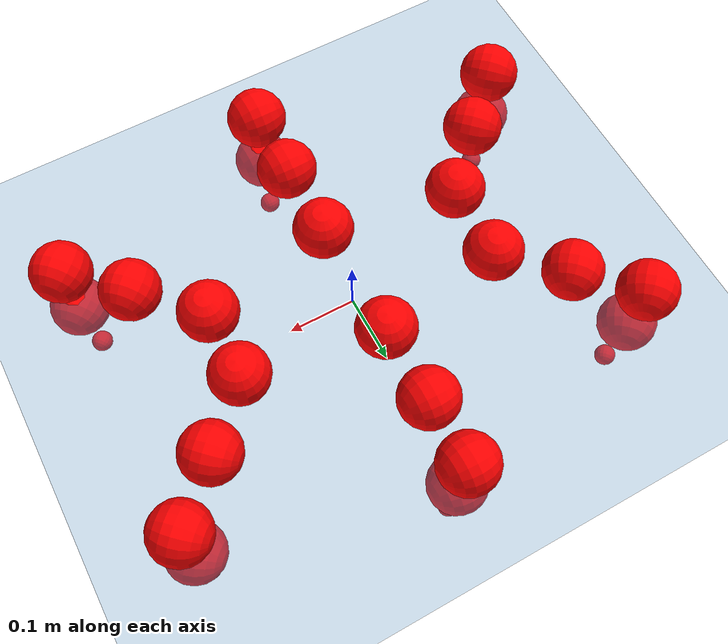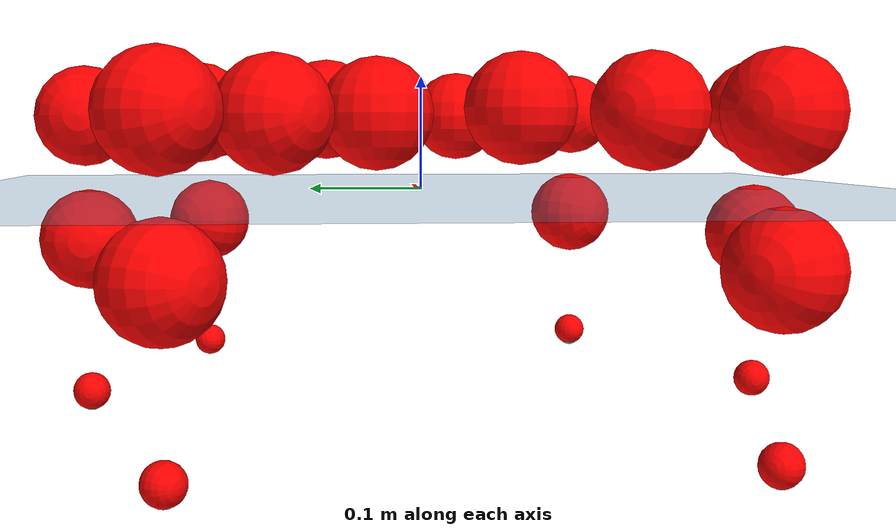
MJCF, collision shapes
<mujoco model="Golem">
  <compiler angle="radian" assetdir="assets" balanceinertia="true" inertiafromgeom="false"/>

  <option timestep="0.005" density="1.2" viscosity="2e-05"/>

  <size nkey="1"/>

  <visual>
    <quality shadowsize="8192"/>
    <map shadowclip="0.5"/>
  </visual>

  <default>
    <default class="/">
      <joint armature="0.01" damping="0.01" frictionloss="0.01"/>
      <geom contype="0" conaffinity="0" group="1" solref="-1000 -80"/>
      <site size="0.01 0.005 0.005" group="5"/>
      <general forcelimited="true" biastype="affine" gainprm="25" biasprm="0 -25 -0.5"/>
      <default class="visual">
        <geom type="mesh" group="2"/>
      </default>
      <default class="collision">
        <geom group="3"/>
      </default>
      <default class="foot">
        <geom size="0.01 0 0" condim="6" group="4" priority="1" solimp="0.015 1 0.01"/>
      </default>
      <default class="reward_collision_sphere">
        <geom group="5" rgba="1 0 0 1"/>
      </default>
    </default>
  </default>

  <asset>
    <texture type="skybox" colorspace="auto" name="//unnamed_texture_0" builtin="gradient" rgb1="0.95 0.95 0.95" rgb2="0.95 0.95 0.95" width="100" height="600"/>
    <texture type="2d" colorspace="auto" name="texplane" builtin="checker" rgb1="0.345 0.575 0.748" rgb2="0.345 0.575 0.748" markrgb="1 1 1" width="512" height="512"/>
    <material name="MatPlane" class="/" texture="texplane" texuniform="true" texrepeat="2 2" specular="0.9"/>
    <mesh name="body" class="/" file="body.stl" scale="0.001 0.001 0.001"/>
    <mesh name="coxa" class="/" file="coxa.stl" scale="0.001 0.001 0.001"/>
    <mesh name="femur" class="/" file="femur.stl" scale="0.001 0.001 0.001"/>
    <mesh name="tibia" class="/" file="tibia.stl" scale="0.001 0.001 0.001"/>
    <mesh name="tarsus" class="/" file="tarsus.stl" scale="0.001 0.001 0.001"/>
  </asset>

  <worldbody>
    <geom name="floor" class="/" size="100 100 0.125" type="plane" group="0" material="MatPlane"/>
    <light name="toplight_shadow" class="/" pos="0 0 5" dir="0.0990148 0.0990148 -0.990148" type="directional" ambient="0.04 0.04 0.04" diffuse="0.55 0.55 0.55" specular="0.12 0.12 0.12"/>
    <light name="toplight_fill" class="/" pos="0 0 5" dir="0.0990148 0.0990148 -0.990148" type="directional" castshadow="false" ambient="0.04 0.04 0.04" diffuse="0.3 0.3 0.3" specular="0.08 0.08 0.08"/>
    <body name="trunk" pos="-0.00281407 -0.00268567 -0.000439148" quat="1 0.000612151 0.00070043 0.000338775">
      <inertial pos="0.00320093 -0.0010725 -0.00237831" quat="0.999907 -0.00119332 -0.0131928 -0.00329611" mass="5.13546" diaginertia="0.0319896 0.00834583 0.0158068"/>
      <joint name="//unnamed_joint_0" type="free"/>
      <geom name="//unnamed_geom_1" class="/" pos="0 0 0.0692623" quat="1 0 0 0" type="mesh" rgba="0.9 0.9 0.9 1" mesh="body"/>
      <site name="imu" class="/" pos="0.176491 0.0140575 0.105866" size="0.0109974"/>
      <camera name="track" class="/" pos="0 -1.91976 0" quat="0.707107 0.707107 0 0" mode="trackcom"/>
      <camera name="ego_camera" class="/" pos="0.163427 0 0.108222" quat="-0.5 -0.5 0.5 0.5"/>
      <body name="coxa_RR" pos="-0.225379 -0.0823514 0.0701231" quat="0.382902 -0.000482915 -0.000149542 -0.923789">
        <inertial pos="-0.000288547 -0.000728847 0.0014767" quat="0.999997 8.88552e-06 0.00187661 -0.00150542" mass="0.267582" diaginertia="0.0304481 0.00809031 0.0147321"/>
        <joint name="coxa_joint_RR" class="/" pos="0 0 0" axis="0.00121337 7.17552e-05 -0.999999" range="-3.14215 3.10153" armature="0.0113264" damping="0.00380541" frictionloss="0.0115653"/>
        <geom name="//unnamed_geom_2" class="/" type="mesh" rgba="0.2 0.2 0.2 1" mesh="coxa"/>
        <geom name="//unnamed_geom_3" class="reward_collision_sphere" size="0.0439897" pos="-0.0377138 0 0"/>
        <body name="femur_RR" pos="0.0772433 0.0013697 -0.00294512" quat="0.500045 -0.499951 0.500074 0.49993">
          <inertial pos="-0.00166279 -0.000197161 -0.000915252" quat="0.999976 -0.00529589 0.00445067 -0.000416027" mass="0.256399" diaginertia="0.0303383 0.00792822 0.0145317"/>
          <joint name="femur_joint_RR" class="/" pos="0 0 0" axis="0.0096761 0.00185276 -0.999951" stiffness="0.00266042" range="-3.15143 3.13391" armature="0.011655" damping="0.0175194" frictionloss="0.0108807"/>
          <geom name="//unnamed_geom_4" class="/" type="mesh" rgba="0.9 0.9 0.9 1" mesh="femur"/>
          <geom name="//unnamed_geom_5" class="reward_collision_sphere" size="0.0439897"/>
          <body name="tibia_RR" pos="0.00135382 -0.105393 -0.00120475" quat="-0.000454405 1 0.000123421 0.00024024">
            <inertial pos="0.000416787 -0.000396169 -0.00251707" quat="0.999911 -0.000867301 -0.00375937 0.0127711" mass="0.274248" diaginertia="0.0317664 0.00849962 0.015029"/>
            <joint name="tibia_joint_RR" class="/" pos="0 0 0" axis="-0.00860685 0.0117647 0.999894" range="-3.19391 3.14261" armature="0.00984109" damping="0" frictionloss="0.00947373"/>
            <geom name="//unnamed_geom_6" class="/" type="mesh" rgba="0.2 0.2 0.2 1" mesh="tibia"/>
            <geom name="//unnamed_geom_7" class="reward_collision_sphere" size="0.0439897"/>
            <body name="tarsus_RR" pos="0.108741 0.00244936 -0.000186358" quat="1 3.39067e-05 0.000165314 -5.07676e-05">
              <inertial pos="0.0745696 0.000194544 -0.000128982" quat="0.50412 0.495812 0.497374 0.502646" mass="0.259108" diaginertia="0.031067 0.00783444 0.0147508"/>
              <joint name="tarsus_joint_RR" class="/" pos="0 0 0" axis="-0.00512979 7.79888e-06 0.999987" range="-3.1217 3.08311" armature="0.00999323" damping="0.0427712" frictionloss="0.011327"/>
              <geom name="//unnamed_geom_8" class="/" type="mesh" rgba="0.9 0.9 0.9 1" mesh="tarsus"/>
              <geom name="foot_1" class="foot" size="0.0111483" pos="0.140798 0 0" quat="0 -0.707107 0 0.707107"/>
              <geom name="//unnamed_geom_10" class="reward_collision_sphere" size="0.0439897"/>
              <geom name="//unnamed_geom_11" class="reward_collision_sphere" size="0.0164962" pos="0.135141 0 0"/>
              <site name="foot_1" class="foot" pos="0.140798 0 0" quat="0 -0.707107 0 0.707107" size="0.0109974"/>
            </body>
          </body>
        </body>
      </body>
      <body name="coxa_RM" pos="0.00041635 -0.125008 0.0730383" quat="0.706967 -0.000724625 -0.000281775 -0.707246">
        <inertial pos="-0.00260044 0.000249903 -0.00208171" quat="0.999901 -0.000881954 -0.000972617 0.0139914" mass="0.26604" diaginertia="0.0299038 0.00812497 0.0144425"/>
        <joint name="coxa_joint_RM" class="/" pos="0 0 0" axis="-0.00166814 -0.00038206 -0.999999" stiffness="0.00212897" range="-3.13312 3.15879" armature="0.0105533" damping="0.0112343" frictionloss="0.00990879"/>
        <geom name="//unnamed_geom_12" class="/" type="mesh" rgba="0.2 0.2 0.2 1" mesh="coxa"/>
        <geom name="//unnamed_geom_13" class="reward_collision_sphere" size="0.0439897" pos="-0.0377138 0 0"/>
        <body name="femur_RM" pos="0.0761744 0.000341993 -0.000747267" quat="0.499994 -0.500509 0.500756 0.49874">
          <inertial pos="0.00199278 0.000255447 0.000145084" quat="0.999968 0.000877708 -0.00559207 0.00573463" mass="0.265326" diaginertia="0.0315102 0.00786658 0.0149613"/>
          <joint name="femur_joint_RM" class="/" pos="0 0 0" axis="0.0107581 -0.00738881 -0.999915" range="-3.14394 3.12906" armature="0.0117571" damping="0.0156929" frictionloss="0.0115736"/>
          <geom name="//unnamed_geom_14" class="/" type="mesh" rgba="0.9 0.9 0.9 1" mesh="femur"/>
          <geom name="//unnamed_geom_15" class="reward_collision_sphere" size="0.0439897"/>
          <body name="tibia_RM" pos="0.000178951 -0.101958 -0.000781791" quat="6.62318e-07 1 -5.9024e-05 2.35756e-05">
            <inertial pos="-0.00147353 0.00178472 -0.00267638" quat="0.999993 -0.00358214 -5.02385e-05 0.000503752" mass="0.275779" diaginertia="0.0325856 0.00788757 0.0145814"/>
            <joint name="tibia_joint_RM" class="/" pos="0 0 0" axis="-0.000667031 -0.0125773 0.999921" range="-3.15094 3.10494" armature="0.0113974" damping="0.0113145" frictionloss="0.0101337"/>
            <geom name="//unnamed_geom_16" class="/" type="mesh" rgba="0.2 0.2 0.2 1" mesh="tibia"/>
            <geom name="//unnamed_geom_17" class="reward_collision_sphere" size="0.0439897"/>
            <body name="tarsus_RM" pos="0.112996 0.000954391 -0.000126874" quat="1 -0.00018205 0.000342273 0.000332617">
              <inertial pos="0.0760278 -0.00029738 0.00108564" quat="0.50042 0.499765 0.499386 0.500428" mass="0.265955" diaginertia="0.0308607 0.00819961 0.0155655"/>
              <joint name="tarsus_joint_RM" class="/" pos="0 0 0" axis="0.0103452 0.00990486 0.999897" range="-3.15893 3.13741" armature="0.0109122" damping="0.00460989" frictionloss="0.0104721"/>
              <geom name="//unnamed_geom_18" class="/" type="mesh" rgba="0.9 0.9 0.9 1" mesh="tarsus"/>
              <geom name="foot_2" class="foot" size="0.0102222" pos="0.140798 0 0" quat="0 -0.707107 0 0.707107"/>
              <geom name="//unnamed_geom_20" class="reward_collision_sphere" size="0.0439897"/>
              <geom name="//unnamed_geom_21" class="reward_collision_sphere" size="0.0164962" pos="0.135141 0 0"/>
              <site name="foot_2" class="foot" pos="0.140798 0 0" quat="0 -0.707107 0 0.707107" size="0.0109974"/>
            </body>
          </body>
        </body>
      </body>
      <body name="coxa_RF" pos="0.223948 -0.0777821 0.0676884" quat="0.924055 -9.34205e-05 -0.000224537 -0.382259">
        <inertial pos="-0.00113939 -0.000497443 -0.000889621" quat="0.999917 -0.00634064 -0.0032584 -0.0107039" mass="0.273527" diaginertia="0.0331501 0.00811181 0.015141"/>
        <joint name="coxa_joint_RF" class="/" pos="0 0 0" axis="0.00274665 0.000516931 -0.999996" range="-3.17762 3.14193" armature="0.0124087" damping="0.012216" frictionloss="0.0103698"/>
        <geom name="//unnamed_geom_22" class="/" type="mesh" rgba="0.2 0.2 0.2 1" mesh="coxa"/>
        <geom name="//unnamed_geom_23" class="reward_collision_sphere" size="0.0439897" pos="-0.0377138 0 0"/>
        <body name="femur_RF" pos="0.0757417 0.000592335 0.00175372" quat="0.500093 -0.499733 0.50028 0.499894">
          <inertial pos="0.0026218 0.00158546 0.00251171" quat="0.999987 0.00261585 0.00359779 0.00245423" mass="0.257276" diaginertia="0.0325804 0.00790414 0.015075"/>
          <joint name="femur_joint_RF" class="/" pos="0 0 0" axis="0.011624 0.0086045 -0.999895" range="-3.15329 3.08112" armature="0.0112142" damping="0.00768591" frictionloss="0.0108165"/>
          <geom name="//unnamed_geom_24" class="/" type="mesh" rgba="0.9 0.9 0.9 1" mesh="femur"/>
          <geom name="//unnamed_geom_25" class="reward_collision_sphere" size="0.0439897"/>
          <body name="tibia_RF" pos="-0.00202961 -0.101576 0.00219726" quat="0.000547163 1 3.13422e-05 -4.71787e-05">
            <inertial pos="-0.00162853 -0.00244058 0.00201438" quat="0.999914 0.00204308 -0.00729364 0.0107295" mass="0.276058" diaginertia="0.0312598 0.00806674 0.0148854"/>
            <joint name="tibia_joint_RF" class="/" pos="0 0 0" axis="-0.00281716 0.00171174 0.999995" range="-3.15392 3.07996" armature="0.0116538" damping="0.0174697" frictionloss="0.0105735"/>
            <geom name="//unnamed_geom_26" class="/" type="mesh" rgba="0.2 0.2 0.2 1" mesh="tibia"/>
            <geom name="//unnamed_geom_27" class="reward_collision_sphere" size="0.0439897"/>
            <body name="tarsus_RF" pos="0.111298 0.00216214 -0.00204968" quat="0.999999 0.000127797 0.000511392 0.00137541">
              <inertial pos="0.0775282 0.000211872 0.0007765" quat="0.499803 0.500018 0.500061 0.500119" mass="0.269977" diaginertia="0.0321343 0.00827002 0.0143203"/>
              <joint name="tarsus_joint_RF" class="/" pos="0 0 0" axis="0.00324009 0.00179635 0.999993" range="-3.19028 3.13952" armature="0.0125501" damping="0.00649557" frictionloss="0.0116017"/>
              <geom name="//unnamed_geom_28" class="/" type="mesh" rgba="0.9 0.9 0.9 1" mesh="tarsus"/>
              <geom name="foot_3" class="foot" size="0.0118145" pos="0.140798 0 0" quat="0 -0.707107 0 0.707107"/>
              <geom name="//unnamed_geom_30" class="reward_collision_sphere" size="0.0439897"/>
              <geom name="//unnamed_geom_31" class="reward_collision_sphere" size="0.0164962" pos="0.135141 0 0"/>
              <site name="foot_3" class="foot" pos="0.140798 0 0" quat="0 -0.707107 0 0.707107" size="0.0109974"/>
            </body>
          </body>
        </body>
      </body>
      <body name="coxa_LR" pos="-0.221643 0.0821118 0.0657024" quat="0.3828 -0.000258954 0.00108051 0.923831">
        <inertial pos="0.000906897 1.24115e-06 -0.00120112" quat="0.999904 0.00706369 0.0114055 -0.00343224" mass="0.255369" diaginertia="0.031134 0.00810179 0.0146826"/>
        <joint name="coxa_joint_LR" class="/" pos="0 0 0" axis="-0.00281695 0.000418242 -0.999996" stiffness="0.0131873" range="-3.15411 3.16508" armature="0.0125427" damping="0.00788402" frictionloss="0.0102643"/>
        <geom name="//unnamed_geom_32" class="/" type="mesh" rgba="0.2 0.2 0.2 1" mesh="coxa"/>
        <geom name="//unnamed_geom_33" class="reward_collision_sphere" size="0.0439897" pos="-0.0377138 0 0"/>
        <body name="femur_LR" pos="0.0754308 0.00176341 -0.00134384" quat="0.500133 -0.500435 0.499503 0.499928">
          <inertial pos="0.000367603 0.00105289 0.000718746" quat="0.999914 0.00123862 -0.0125496 -0.00357521" mass="0.257381" diaginertia="0.0296897 0.00799187 0.0141838"/>
          <joint name="femur_joint_LR" class="/" pos="0 0 0" axis="-0.00174604 -0.00433867 0.999989" range="-3.15909 3.0836" armature="0.0124387" damping="0" frictionloss="0.0105572"/>
          <geom name="//unnamed_geom_34" class="/" type="mesh" rgba="0.9 0.9 0.9 1" mesh="femur"/>
          <geom name="//unnamed_geom_35" class="reward_collision_sphere" size="0.0439897"/>
          <body name="tibia_LR" pos="-0.00143168 -0.104791 -0.0023965" quat="0.000832505 0.999999 -0.000740563 0.000892634">
            <inertial pos="0.0028196 0.00183026 0.000472029" quat="0.999908 -0.0121313 -0.00251548 -0.00557913" mass="0.259691" diaginertia="0.0322459 0.00852185 0.0147912"/>
            <joint name="tibia_joint_LR" class="/" pos="0 0 0" axis="-0.00140197 0.00279711 -0.999995" stiffness="0.00881779" range="-3.14904 3.13198" armature="0.0116182" damping="0.0140038" frictionloss="0.0124269"/>
            <geom name="//unnamed_geom_36" class="/" type="mesh" rgba="0.2 0.2 0.2 1" mesh="tibia"/>
            <geom name="//unnamed_geom_37" class="reward_collision_sphere" size="0.0439897"/>
            <body name="tarsus_LR" pos="0.113804 -5.3262e-05 -0.00199741" quat="1 0.000604523 0.000199595 -0.000764132">
              <inertial pos="0.073587 -0.00252208 -0.00133206" quat="0.499475 0.49647 0.495009 0.508928" mass="0.266973" diaginertia="0.0314177 0.00812548 0.0146702"/>
              <joint name="tarsus_joint_LR" class="/" pos="0 0 0" axis="0.000681477 -0.0007565 -0.999999" stiffness="0.00246099" range="-3.12821 3.14668" armature="0.0101744" damping="0.0285927" frictionloss="0.0102797"/>
              <geom name="//unnamed_geom_38" class="/" type="mesh" rgba="0.9 0.9 0.9 1" mesh="tarsus"/>
              <geom name="foot_4" class="foot" size="0.011083" pos="0.140798 0 0" quat="0.707107 0 -0.707107 0"/>
              <geom name="//unnamed_geom_40" class="reward_collision_sphere" size="0.0439897"/>
              <geom name="//unnamed_geom_41" class="reward_collision_sphere" size="0.0164962" pos="0.135141 0 0"/>
              <site name="foot_4" class="foot" pos="0.140798 0 0" quat="0.707107 0 -0.707107 0" size="0.0109974"/>
            </body>
          </body>
        </body>
      </body>
      <body name="coxa_LM" pos="-0.00317076 0.125699 0.0713946" quat="0.707238 0.000249851 -8.64302e-05 0.706975">
        <inertial pos="0.00272145 -0.0022138 -0.00213015" quat="0.999914 -0.00566295 -0.0116256 0.00205091" mass="0.268714" diaginertia="0.0312714 0.00831172 0.015304"/>
        <joint name="coxa_joint_LM" class="/" pos="0 0 0" axis="0.0036928 0.00142081 -0.999992" stiffness="0.00602072" range="-3.14264 3.14883" armature="0.0114622" damping="0" frictionloss="0.0115667"/>
        <geom name="//unnamed_geom_42" class="/" type="mesh" rgba="0.2 0.2 0.2 1" mesh="coxa"/>
        <geom name="//unnamed_geom_43" class="reward_collision_sphere" size="0.0439897" pos="-0.0377138 0 0"/>
        <body name="femur_LM" pos="0.0748468 0.000383725 -0.00288509" quat="0.498974 -0.500708 0.499746 0.50057">
          <inertial pos="-0.00259793 -0.000157212 -0.00216276" quat="0.99991 0.0126949 -0.00294865 -0.00305776" mass="0.283402" diaginertia="0.0325621 0.00833226 0.0153768"/>
          <joint name="femur_joint_LM" class="/" pos="0 0 0" axis="-0.000290264 -0.00421603 0.999991" range="-3.08418 3.15067" armature="0.0126601" damping="0" frictionloss="0.0109919"/>
          <geom name="//unnamed_geom_44" class="/" type="mesh" rgba="0.9 0.9 0.9 1" mesh="femur"/>
          <geom name="//unnamed_geom_45" class="reward_collision_sphere" size="0.0439897"/>
          <body name="tibia_LM" pos="0.00321231 -0.099138 -0.000264907" quat="0.00012011 1 -0.000206569 -0.000179068">
            <inertial pos="0.0017075 0.00114118 0.000890462" quat="0.999997 0.000549574 -0.00137255 0.0019815" mass="0.269636" diaginertia="0.030854 0.00799087 0.0155184"/>
            <joint name="tibia_joint_LM" class="/" pos="0 0 0" axis="-0.0101021 -0.00664904 -0.999927" range="-3.12645 3.15015" armature="0.0125586" damping="0.00524774" frictionloss="0.0094645"/>
            <geom name="//unnamed_geom_46" class="/" type="mesh" rgba="0.2 0.2 0.2 1" mesh="tibia"/>
            <geom name="//unnamed_geom_47" class="reward_collision_sphere" size="0.0439897"/>
            <body name="tarsus_LM" pos="0.108706 -0.00263978 0.00245866" quat="0.999999 -0.00110862 0.000708075 -0.000706998">
              <inertial pos="0.0768297 0.00161053 0.00278343" quat="0.503909 0.498553 0.496946 0.500565" mass="0.271006" diaginertia="0.0312127 0.00836076 0.0147643"/>
              <joint name="tarsus_joint_LM" class="/" pos="0 0 0" axis="-0.00441131 -0.0114004 -0.999925" stiffness="0.00984609" range="-3.14947 3.11874" armature="0.0111786" damping="0.0177039" frictionloss="0.0110414"/>
              <geom name="//unnamed_geom_48" class="/" type="mesh" rgba="0.9 0.9 0.9 1" mesh="tarsus"/>
              <geom name="foot_5" class="foot" size="0.0113164" pos="0.140798 0 0" quat="0.707107 0 -0.707107 0"/>
              <geom name="//unnamed_geom_50" class="reward_collision_sphere" size="0.0439897"/>
              <geom name="//unnamed_geom_51" class="reward_collision_sphere" size="0.0164962" pos="0.135141 0 0"/>
              <site name="foot_5" class="foot" pos="0.140798 0 0" quat="0.707107 0 -0.707107 0" size="0.0109974"/>
            </body>
          </body>
        </body>
      </body>
      <body name="coxa_LF" pos="0.225815 0.0776629 0.0671127" quat="0.924257 -0.000391147 0.000351982 0.38177">
        <inertial pos="-0.000178093 0.0014631 7.4068e-05" quat="0.999994 -0.00242151 -0.0017605 -0.00166924" mass="0.261164" diaginertia="0.0308148 0.00856757 0.0151463"/>
        <joint name="coxa_joint_LF" class="/" pos="0 0 0" axis="-0.0131773 -0.0113933 -0.999848" range="-3.13514 3.1179" armature="0.0113146" damping="0.0200841" frictionloss="0.0114107"/>
        <geom name="//unnamed_geom_52" class="/" type="mesh" rgba="0.2 0.2 0.2 1" mesh="coxa"/>
        <geom name="//unnamed_geom_53" class="reward_collision_sphere" size="0.0439897" pos="-0.0377138 0 0"/>
        <body name="femur_LF" pos="0.0734394 -0.00010609 -0.00220913" quat="0.500545 -0.499243 0.499414 0.500796">
          <inertial pos="0.00287658 3.12977e-06 0.00100601" quat="0.999929 0.00962725 -0.00683743 0.00127741" mass="0.262965" diaginertia="0.0303564 0.00824454 0.0150596"/>
          <joint name="femur_joint_LF" class="/" pos="0 0 0" axis="-0.000962929 0.0120328 0.999927" range="-3.14631 3.10694" armature="0.0107257" damping="0" frictionloss="0.0111107"/>
          <geom name="//unnamed_geom_54" class="/" type="mesh" rgba="0.9 0.9 0.9 1" mesh="femur"/>
          <geom name="//unnamed_geom_55" class="reward_collision_sphere" size="0.0439897"/>
          <body name="tibia_LF" pos="-0.00106465 -0.106392 -0.000765864" quat="0.000274315 0.999999 0.000421412 0.000993603">
            <inertial pos="0.000200959 -0.00187497 0.00026287" quat="0.999993 -0.00323831 -0.00152852 0.000657137" mass="0.266503" diaginertia="0.0303236 0.00813604 0.0145983"/>
            <joint name="tibia_joint_LF" class="/" pos="0 0 0" axis="0.0107609 0.00905522 -0.999901" range="-3.19102 3.11975" armature="0.0125264" damping="0.000388757" frictionloss="0.0121451"/>
            <geom name="//unnamed_geom_56" class="/" type="mesh" rgba="0.2 0.2 0.2 1" mesh="tibia"/>
            <geom name="//unnamed_geom_57" class="reward_collision_sphere" size="0.0439897"/>
            <body name="tarsus_LF" pos="0.112245 0.00287913 -0.0028378" quat="1 -0.000168301 0.000327889 2.31166e-05">
              <inertial pos="0.0737035 0.000818588 0.000312263" quat="0.501719 0.49564 0.500299 0.502314" mass="0.264508" diaginertia="0.0314164 0.00819068 0.0142513"/>
              <joint name="tarsus_joint_LF" class="/" pos="0 0 0" axis="0.00525641 0.00303062 -0.999982" stiffness="0.0268507" range="-3.11276 3.08727" armature="0.0117448" damping="0.0251886" frictionloss="0.0123212"/>
              <geom name="//unnamed_geom_58" class="/" type="mesh" rgba="0.9 0.9 0.9 1" mesh="tarsus"/>
              <geom name="foot_6" class="foot" size="0.00992634" pos="0.140798 0 0" quat="0.707107 0 -0.707107 0"/>
              <geom name="//unnamed_geom_60" class="reward_collision_sphere" size="0.0439897"/>
              <geom name="//unnamed_geom_61" class="reward_collision_sphere" size="0.0164962" pos="0.135141 0 0"/>
              <site name="foot_6" class="foot" pos="0.140798 0 0" quat="0.707107 0 -0.707107 0" size="0.0109974"/>
            </body>
          </body>
        </body>
      </body>
    </body>
  </worldbody>

  <contact>
    <pair class="/" geom1="floor" geom2="foot_1" name="//unnamed_contact_0"/>
    <pair class="/" geom1="floor" geom2="foot_2" name="//unnamed_contact_1"/>
    <pair class="/" geom1="floor" geom2="foot_3" name="//unnamed_contact_2"/>
    <pair class="/" geom1="floor" geom2="foot_4" name="//unnamed_contact_3"/>
    <pair class="/" geom1="floor" geom2="foot_5" name="//unnamed_contact_4"/>
    <pair class="/" geom1="floor" geom2="foot_6" name="//unnamed_contact_5"/>
  </contact>

  <actuator>
    <general name="coxa_joint_RR" class="/" joint="coxa_joint_RR" forcerange="-7.49844 7.49844" gainprm="26.0749" biasprm="0 -26.0749 -0.52641"/>
    <general name="femur_joint_RR" class="/" joint="femur_joint_RR" forcerange="-8.69654 8.69654" gainprm="26.0749" biasprm="0 -26.0749 -0.52641"/>
    <general name="tibia_joint_RR" class="/" joint="tibia_joint_RR" forcerange="-7.67239 7.67239" gainprm="26.0749" biasprm="0 -26.0749 -0.52641"/>
    <general name="tarsus_joint_RR" class="/" joint="tarsus_joint_RR" forcerange="-8.803 8.803" gainprm="26.0749" biasprm="0 -26.0749 -0.52641"/>
    <general name="coxa_joint_RM" class="/" joint="coxa_joint_RM" forcerange="-8.04028 8.04028" gainprm="26.0749" biasprm="0 -26.0749 -0.52641"/>
    <general name="femur_joint_RM" class="/" joint="femur_joint_RM" forcerange="-7.96847 7.96847" gainprm="26.0749" biasprm="0 -26.0749 -0.52641"/>
    <general name="tibia_joint_RM" class="/" joint="tibia_joint_RM" forcerange="-7.3611 7.3611" gainprm="26.0749" biasprm="0 -26.0749 -0.52641"/>
    <general name="tarsus_joint_RM" class="/" joint="tarsus_joint_RM" forcerange="-8.45152 8.45152" gainprm="26.0749" biasprm="0 -26.0749 -0.52641"/>
    <general name="coxa_joint_RF" class="/" joint="coxa_joint_RF" forcerange="-7.99673 7.99673" gainprm="26.0749" biasprm="0 -26.0749 -0.52641"/>
    <general name="femur_joint_RF" class="/" joint="femur_joint_RF" forcerange="-8.13147 8.13147" gainprm="26.0749" biasprm="0 -26.0749 -0.52641"/>
    <general name="tibia_joint_RF" class="/" joint="tibia_joint_RF" forcerange="-8.6044 8.6044" gainprm="26.0749" biasprm="0 -26.0749 -0.52641"/>
    <general name="tarsus_joint_RF" class="/" joint="tarsus_joint_RF" forcerange="-8.65954 8.65954" gainprm="26.0749" biasprm="0 -26.0749 -0.52641"/>
    <general name="coxa_joint_LR" class="/" joint="coxa_joint_LR" forcerange="-7.96433 7.96433" gainprm="26.0749" biasprm="0 -26.0749 -0.52641"/>
    <general name="femur_joint_LR" class="/" joint="femur_joint_LR" forcerange="-7.23511 7.23511" gainprm="26.0749" biasprm="0 -26.0749 -0.52641"/>
    <general name="tibia_joint_LR" class="/" joint="tibia_joint_LR" forcerange="-7.41277 7.41277" gainprm="26.0749" biasprm="0 -26.0749 -0.52641"/>
    <general name="tarsus_joint_LR" class="/" joint="tarsus_joint_LR" forcerange="-7.17601 7.17601" gainprm="26.0749" biasprm="0 -26.0749 -0.52641"/>
    <general name="coxa_joint_LM" class="/" joint="coxa_joint_LM" forcerange="-7.41152 7.41152" gainprm="26.0749" biasprm="0 -26.0749 -0.52641"/>
    <general name="femur_joint_LM" class="/" joint="femur_joint_LM" forcerange="-7.84309 7.84309" gainprm="26.0749" biasprm="0 -26.0749 -0.52641"/>
    <general name="tibia_joint_LM" class="/" joint="tibia_joint_LM" forcerange="-7.17765 7.17765" gainprm="26.0749" biasprm="0 -26.0749 -0.52641"/>
    <general name="tarsus_joint_LM" class="/" joint="tarsus_joint_LM" forcerange="-8.08401 8.08401" gainprm="26.0749" biasprm="0 -26.0749 -0.52641"/>
    <general name="coxa_joint_LF" class="/" joint="coxa_joint_LF" forcerange="-7.59225 7.59225" gainprm="26.0749" biasprm="0 -26.0749 -0.52641"/>
    <general name="femur_joint_LF" class="/" joint="femur_joint_LF" forcerange="-8.12859 8.12859" gainprm="26.0749" biasprm="0 -26.0749 -0.52641"/>
    <general name="tibia_joint_LF" class="/" joint="tibia_joint_LF" forcerange="-8.88073 8.88073" gainprm="26.0749" biasprm="0 -26.0749 -0.52641"/>
    <general name="tarsus_joint_LF" class="/" joint="tarsus_joint_LF" forcerange="-7.43808 7.43808" gainprm="26.0749" biasprm="0 -26.0749 -0.52641"/>
  </actuator>

  <sensor>
    <gyro site="imu" name="imu_angular_velocity"/>
    <velocimeter site="imu" name="imu_linear_velocity"/>
    <framelinvel objtype="site" objname="foot_1" name="foot_1_global_linear_velocity"/>
    <framelinvel objtype="site" objname="foot_2" name="foot_2_global_linear_velocity"/>
    <framelinvel objtype="site" objname="foot_3" name="foot_3_global_linear_velocity"/>
    <framelinvel objtype="site" objname="foot_4" name="foot_4_global_linear_velocity"/>
    <framelinvel objtype="site" objname="foot_5" name="foot_5_global_linear_velocity"/>
    <framelinvel objtype="site" objname="foot_6" name="foot_6_global_linear_velocity"/>
  </sensor>

  <keyframe>
    <key name="home" qpos="0 0 0.1457 1 0 0 0 0 0 0 0 0 0 0 0 0 0 0 0 0 0 0 0 0 0 0 0 0 0 0 0"/>
  </keyframe>
</mujoco>
